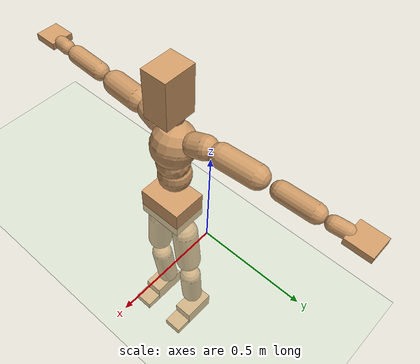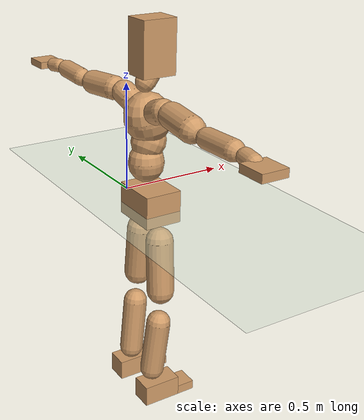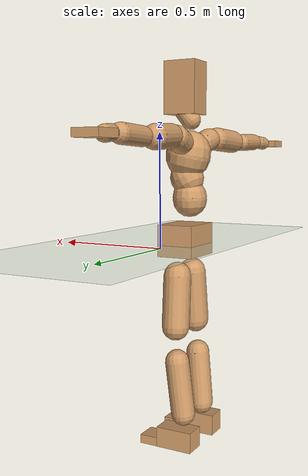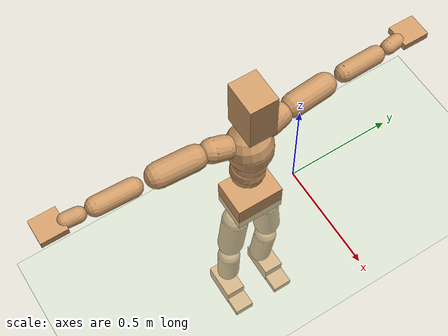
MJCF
<mujoco model="humanoid">
  <compiler coordinate="local" />
  <default>
    <joint damping="0.0" armature="0.01" stiffness="0.0" limited="true" />
    <geom conaffinity="1" condim="3" contype="7" margin="0.001" rgba="0.8 0.6 .4 1" />
  </default>
  <asset>
    <texture type="skybox" builtin="gradient" rgb1=".4 .5 .6" rgb2="0 0 0" width="100" height="100" />
    <texture builtin="flat" height="1278" mark="cross" markrgb="1 1 1" name="texgeom" random="0.01" rgb1="0.8 0.6 0.4" rgb2="0.8 0.6 0.4" type="cube" width="127" />
    <texture builtin="checker" height="100" name="texplane" rgb1="0 0 0" rgb2="0.8 0.8 0.8" type="2d" width="100" />
    <material name="MatPlane" reflectance="0.5" shininess="1" specular="1" texrepeat="60 60" texture="texplane" />
    <material name="geom" texture="texgeom" texuniform="true" />
  </asset>
  <worldbody>
    <light cutoff="100" diffuse="1 1 1" dir="-0 0 -1.3" directional="true" exponent="1" pos="0 0 1.3" specular=".1 .1 .1" />
    <geom conaffinity="1" condim="3" name="floor" pos="0 0 0" rgba="0.8 0.9 0.8 1" size="100 100 .2" type="plane" material="MatPlane" />
    <body name="Pelvis" pos="-0.0017 -0.2229 0.0309">
      <freejoint name="Pelvis" />
      <geom type="box" pos="-0.0066 -0.0001 -0.0119" size="0.0856 0.1106 0.0738" quat="1.0000 0.0000 0.0000 0.0000" density="1000" />
      <body name="L_Hip" pos="-0.0057 0.0717 -0.0932">
        <joint name="L_Hip_x" type="hinge" pos="0 0 0" axis="1 0 0" stiffness="800" damping="80" armature="0.02" range="-180.0000 180.0000" />
        <joint name="L_Hip_y" type="hinge" pos="0 0 0" axis="0 1 0" stiffness="800" damping="80" armature="0.02" range="-180.0000 180.0000" />
        <joint name="L_Hip_z" type="hinge" pos="0 0 0" axis="0 0 1" stiffness="800" damping="80" armature="0.02" range="-180.0000 180.0000" />
        <geom type="capsule" contype="1" conaffinity="1" density="2040.816327" fromto="-0.0010 0.0073 -0.0785 -0.0038 0.0293 -0.3140" size="0.0637" />
        <body name="L_Knee" pos="-0.0048 0.0367 -0.3926">
          <joint name="L_Knee_x" type="hinge" pos="0 0 0" axis="1 0 0" stiffness="800" damping="80" armature="0.02" range="-180.0000 180.0000" />
          <joint name="L_Knee_y" type="hinge" pos="0 0 0" axis="0 1 0" stiffness="800" damping="80" armature="0.02" range="-180.0000 180.0000" />
          <joint name="L_Knee_z" type="hinge" pos="0 0 0" axis="0 0 1" stiffness="800" damping="80" armature="0.02" range="-180.0000 180.0000" />
          <geom type="capsule" contype="1" conaffinity="1" density="1234.567901" fromto="-0.0091 -0.0028 -0.0839 -0.0365 -0.0113 -0.3355" size="0.0558" />
          <body name="L_Ankle" pos="-0.0456 -0.0141 -0.4193">
            <joint name="L_Ankle_x" type="hinge" pos="0 0 0" axis="1 0 0" stiffness="800" damping="80" armature="0.02" range="-180.0000 180.0000" />
            <joint name="L_Ankle_y" type="hinge" pos="0 0 0" axis="0 1 0" stiffness="800" damping="80" armature="0.02" range="-180.0000 180.0000" />
            <joint name="L_Ankle_z" type="hinge" pos="0 0 0" axis="0 0 1" stiffness="800" damping="80" armature="0.02" range="-180.0000 180.0000" />
            <geom type="box" pos="0.0249 0.0245 -0.0251" size="0.0877 0.05 0.0481" quat="1.0000 0.0000 0.0000 0.0000" density="1000" />
            <body name="L_Toe" pos="0.123 0.028 -0.0584">
              <joint name="L_Toe_x" type="hinge" pos="0 0 0" axis="1 0 0" stiffness="500" damping="50" armature="0.02" range="-180.0000 180.0000" />
              <joint name="L_Toe_y" type="hinge" pos="0 0 0" axis="0 1 0" stiffness="500" damping="50" armature="0.02" range="-180.0000 180.0000" />
              <joint name="L_Toe_z" type="hinge" pos="0 0 0" axis="0 0 1" stiffness="500" damping="50" armature="0.02" range="-180.0000 180.0000" />
              <geom type="box" pos="0.0257 -0.0036 0.0058" size="0.0513 0.0489 0.0206" quat="1.0000 0.0000 0.0000 0.0000" density="1000" />
            </body>
          </body>
        </body>
      </body>
      <body name="R_Hip" pos="-0.0032 -0.0698 -0.0923">
        <joint name="R_Hip_x" type="hinge" pos="0 0 0" axis="1 0 0" stiffness="800" damping="80" armature="0.02" range="-180.0000 180.0000" />
        <joint name="R_Hip_y" type="hinge" pos="0 0 0" axis="0 1 0" stiffness="800" damping="80" armature="0.02" range="-180.0000 180.0000" />
        <joint name="R_Hip_z" type="hinge" pos="0 0 0" axis="0 0 1" stiffness="800" damping="80" armature="0.02" range="-180.0000 180.0000" />
        <geom type="capsule" contype="1" conaffinity="1" density="2040.816327" fromto="-0.0019 -0.0082 -0.0800 -0.0076 -0.0328 -0.3201" size="0.0626" />
        <body name="R_Knee" pos="-0.0096 -0.041 -0.4002">
          <joint name="R_Knee_x" type="hinge" pos="0 0 0" axis="1 0 0" stiffness="800" damping="80" armature="0.02" range="-180.0000 180.0000" />
          <joint name="R_Knee_y" type="hinge" pos="0 0 0" axis="0 1 0" stiffness="800" damping="80" armature="0.02" range="-180.0000 180.0000" />
          <joint name="R_Knee_z" type="hinge" pos="0 0 0" axis="0 0 1" stiffness="800" damping="80" armature="0.02" range="-180.0000 180.0000" />
          <geom type="capsule" contype="1" conaffinity="1" density="1234.567901" fromto="-0.0088 0.0033 -0.0840 -0.0354 0.0130 -0.3360" size="0.0557" />
          <body name="R_Ankle" pos="-0.0442 0.0163 -0.42">
            <joint name="R_Ankle_x" type="hinge" pos="0 0 0" axis="1 0 0" stiffness="800" damping="80" armature="0.02" range="-180.0000 180.0000" />
            <joint name="R_Ankle_y" type="hinge" pos="0 0 0" axis="0 1 0" stiffness="800" damping="80" armature="0.02" range="-180.0000 180.0000" />
            <joint name="R_Ankle_z" type="hinge" pos="0 0 0" axis="0 0 1" stiffness="800" damping="80" armature="0.02" range="-180.0000 180.0000" />
            <geom type="box" pos="0.0263 -0.0234 -0.0182" size="0.0892 0.0492 0.0497" quat="1.0000 0.0000 0.0000 0.0000" density="1000" />
            <body name="R_Toe" pos="0.1272 -0.0278 -0.0505">
              <joint name="R_Toe_x" type="hinge" pos="0 0 0" axis="1 0 0" stiffness="500" damping="50" armature="0.02" range="-180.0000 180.0000" />
              <joint name="R_Toe_y" type="hinge" pos="0 0 0" axis="0 1 0" stiffness="500" damping="50" armature="0.02" range="-180.0000 180.0000" />
              <joint name="R_Toe_z" type="hinge" pos="0 0 0" axis="0 0 1" stiffness="500" damping="50" armature="0.02" range="-180.0000 180.0000" />
              <geom type="box" pos="0.0233 0.0044 0.0049" size="0.0508 0.0489 0.0223" quat="1.0000 0.0000 0.0000 0.0000" density="1000" />
            </body>
          </body>
        </body>
      </body>
      <body name="Torso" pos="-0.0293 -0.0026 0.1115">
        <joint name="Torso_x" type="hinge" pos="0 0 0" axis="1 0 0" stiffness="1000" damping="100" armature="0.02" range="-180.0000 180.0000" />
        <joint name="Torso_y" type="hinge" pos="0 0 0" axis="0 1 0" stiffness="1000" damping="100" armature="0.02" range="-180.0000 180.0000" />
        <joint name="Torso_z" type="hinge" pos="0 0 0" axis="0 0 1" stiffness="1000" damping="100" armature="0.02" range="-180.0000 180.0000" />
        <geom type="capsule" contype="1" conaffinity="1" density="2040.816327" fromto="-0.0000 0.0025 0.0609 -0.0001 0.0030 0.0744" size="0.0787" />
        <body name="Spine" pos="-0.0001 0.0055 0.1353">
          <joint name="Spine_x" type="hinge" pos="0 0 0" axis="1 0 0" stiffness="1000" damping="100" armature="0.02" range="-180.0000 180.0000" />
          <joint name="Spine_y" type="hinge" pos="0 0 0" axis="0 1 0" stiffness="1000" damping="100" armature="0.02" range="-180.0000 180.0000" />
          <joint name="Spine_z" type="hinge" pos="0 0 0" axis="0 0 1" stiffness="1000" damping="100" armature="0.02" range="-180.0000 180.0000" />
          <geom type="capsule" contype="1" conaffinity="1" density="2040.816327" fromto="0.0115 0.0006 0.0240 0.0141 0.0008 0.0293" size="0.077" />
          <body name="Chest" pos="0.0256 0.0014 0.0533">
            <joint name="Chest_x" type="hinge" pos="0 0 0" axis="1 0 0" stiffness="1000" damping="100" armature="0.02" range="-180.0000 180.0000" />
            <joint name="Chest_y" type="hinge" pos="0 0 0" axis="0 1 0" stiffness="1000" damping="100" armature="0.02" range="-180.0000 180.0000" />
            <joint name="Chest_z" type="hinge" pos="0 0 0" axis="0 0 1" stiffness="1000" damping="100" armature="0.02" range="-180.0000 180.0000" />
            <geom type="capsule" contype="1" conaffinity="1" density="2040.816327" fromto="-0.0172 -0.0009 0.0698 -0.0210 -0.0011 0.0853" size="0.1026" />
            <body name="Neck" pos="-0.0416 -0.003 0.2189">
              <joint name="Neck_x" type="hinge" pos="0 0 0" axis="1 0 0" stiffness="500" damping="50" armature="0.02" range="-180.0000 180.0000" />
              <joint name="Neck_y" type="hinge" pos="0 0 0" axis="0 1 0" stiffness="500" damping="50" armature="0.02" range="-180.0000 180.0000" />
              <joint name="Neck_z" type="hinge" pos="0 0 0" axis="0 0 1" stiffness="500" damping="50" armature="0.02" range="-180.0000 180.0000" />
              <geom type="capsule" contype="1" conaffinity="1" density="1000" fromto="0.0105 0.0010 0.0132 0.0419 0.0042 0.0527" size="0.0444" />
              <body name="Head" pos="0.0524 0.0052 0.0659">
                <joint name="Head_x" type="hinge" pos="0 0 0" axis="1 0 0" stiffness="500" damping="50" armature="0.02" range="-180.0000 180.0000" />
                <joint name="Head_y" type="hinge" pos="0 0 0" axis="0 1 0" stiffness="500" damping="50" armature="0.02" range="-180.0000 180.0000" />
                <joint name="Head_z" type="hinge" pos="0 0 0" axis="0 0 1" stiffness="500" damping="50" armature="0.02" range="-180.0000 180.0000" />
                <geom type="box" pos="-0.0118 -0.0041 0.0886" size="0.077 0.0613 0.117" quat="1.0000 0.0000 0.0000 0.0000" density="1000" />

              </body>
            </body>
            <body name="L_Thorax" pos="-0.0341 0.0806 0.1246">
              <joint name="L_Thorax_x" type="hinge" pos="0 0 0" axis="1 0 0" stiffness="500" damping="50" armature="0.02" range="-180.0000 180.0000" />
              <joint name="L_Thorax_y" type="hinge" pos="0 0 0" axis="0 1 0" stiffness="500" damping="50" armature="0.02" range="-180.0000 180.0000" />
              <joint name="L_Thorax_z" type="hinge" pos="0 0 0" axis="0 0 1" stiffness="500" damping="50" armature="0.02" range="-180.0000 180.0000" />
              <geom type="capsule" contype="1" conaffinity="1" density="1000" fromto="-0.0018 0.0185 0.0064 -0.0074 0.0740 0.0257" size="0.0537" />
              <body name="L_Shoulder" pos="-0.0092 0.0925 0.0321">
                <joint name="L_Shoulder_x" type="hinge" pos="0 0 0" axis="1 0 0" stiffness="500" damping="50" armature="0.02" range="-720.0000 720.0000" />
                <joint name="L_Shoulder_y" type="hinge" pos="0 0 0" axis="0 1 0" stiffness="500" damping="50" armature="0.02" range="-720.0000 720.0000" />
                <joint name="L_Shoulder_z" type="hinge" pos="0 0 0" axis="0 0 1" stiffness="500" damping="50" armature="0.02" range="-720.0000 720.0000" />
                <geom type="capsule" contype="1" conaffinity="1" density="1000" fromto="-0.0058 0.0539 -0.0030 -0.0234 0.2157 -0.0120" size="0.0536" />
                <body name="L_Elbow" pos="-0.0292 0.2696 -0.015">
                  <joint name="L_Elbow_x" type="hinge" pos="0 0 0" axis="1 0 0" stiffness="500" damping="50" armature="0.02" range="-720.0000 720.0000" />
                  <joint name="L_Elbow_y" type="hinge" pos="0 0 0" axis="0 1 0" stiffness="500" damping="50" armature="0.02" range="-720.0000 720.0000" />
                  <joint name="L_Elbow_z" type="hinge" pos="0 0 0" axis="0 0 1" stiffness="500" damping="50" armature="0.02" range="-720.0000 720.0000" />
                  <geom type="capsule" contype="1" conaffinity="1" density="1000" fromto="-0.0002 0.0520 0.0020 -0.0007 0.2082 0.0082" size="0.0416" />
                  <body name="L_Wrist" pos="-0.0008 0.2602 0.0102">
                    <joint name="L_Wrist_x" type="hinge" pos="0 0 0" axis="1 0 0" stiffness="300" damping="30" armature="0.02" range="-180.0000 180.0000" />
                    <joint name="L_Wrist_y" type="hinge" pos="0 0 0" axis="0 1 0" stiffness="300" damping="30" armature="0.02" range="-180.0000 180.0000" />
                    <joint name="L_Wrist_z" type="hinge" pos="0 0 0" axis="0 0 1" stiffness="300" damping="30" armature="0.02" range="-180.0000 180.0000" />
                    <geom type="capsule" contype="1" conaffinity="1" density="1000" fromto="-0.0031 0.0174 -0.0017 -0.0124 0.0694 -0.0067" size="0.0327" />
                    <body name="L_Hand" pos="-0.0155 0.0868 -0.0084">
                      <joint name="L_Hand_x" type="hinge" pos="0 0 0" axis="1 0 0" stiffness="300" damping="30" armature="0.02" range="-180.0000 180.0000" />
                      <joint name="L_Hand_y" type="hinge" pos="0 0 0" axis="0 1 0" stiffness="300" damping="30" armature="0.02" range="-180.0000 180.0000" />
                      <joint name="L_Hand_z" type="hinge" pos="0 0 0" axis="0 0 1" stiffness="300" damping="30" armature="0.02" range="-180.0000 180.0000" />
                      <geom type="box" pos="-0.0059 0.0508 0.0010" size="0.0554 0.0602 0.0163" quat="1.0000 0.0000 0.0000 0.0000" density="1000" />
                    </body>
                  </body>
                </body>
              </body>
            </body>
            <body name="R_Thorax" pos="-0.0388 -0.0835 0.1216">
              <joint name="R_Thorax_x" type="hinge" pos="0 0 0" axis="1 0 0" stiffness="500" damping="50" armature="0.02" range="-180.0000 180.0000" />
              <joint name="R_Thorax_y" type="hinge" pos="0 0 0" axis="0 1 0" stiffness="500" damping="50" armature="0.02" range="-180.0000 180.0000" />
              <joint name="R_Thorax_z" type="hinge" pos="0 0 0" axis="0 0 1" stiffness="500" damping="50" armature="0.02" range="-180.0000 180.0000" />
              <geom type="capsule" contype="1" conaffinity="1" density="1000" fromto="-0.0018 -0.0195 0.0068 -0.0072 -0.0781 0.0274" size="0.0526" />
              <body name="R_Shoulder" pos="-0.009 -0.0976 0.0342">
                <joint name="R_Shoulder_x" type="hinge" pos="0 0 0" axis="1 0 0" stiffness="500" damping="50" armature="0.02" range="-720.0000 720.0000" />
                <joint name="R_Shoulder_y" type="hinge" pos="0 0 0" axis="0 1 0" stiffness="500" damping="50" armature="0.02" range="-720.0000 720.0000" />
                <joint name="R_Shoulder_z" type="hinge" pos="0 0 0" axis="0 0 1" stiffness="500" damping="50" armature="0.02" range="-720.0000 720.0000" />
                <geom type="capsule" contype="1" conaffinity="1" density="1000" fromto="-0.0046 -0.0528 -0.0030 -0.0186 -0.2110 -0.0121" size="0.055" />
                <body name="R_Elbow" pos="-0.0232 -0.2638 -0.0151">
                  <joint name="R_Elbow_x" type="hinge" pos="0 0 0" axis="1 0 0" stiffness="500" damping="50" armature="0.02" range="-720.0000 720.0000" />
                  <joint name="R_Elbow_y" type="hinge" pos="0 0 0" axis="0 1 0" stiffness="500" damping="50" armature="0.02" range="-720.0000 720.0000" />
                  <joint name="R_Elbow_z" type="hinge" pos="0 0 0" axis="0 0 1" stiffness="500" damping="50" armature="0.02" range="-720.0000 720.0000" />
                  <geom type="capsule" contype="1" conaffinity="1" density="1000" fromto="-0.0011 -0.0532 0.0017 -0.0045 -0.2127 0.0068" size="0.0419" />
                  <body name="R_Wrist" pos="-0.0056 -0.2659 0.0085">
                    <joint name="R_Wrist_x" type="hinge" pos="0 0 0" axis="1 0 0" stiffness="300" damping="30" armature="0.02" range="-180.0000 180.0000" />
                    <joint name="R_Wrist_y" type="hinge" pos="0 0 0" axis="0 1 0" stiffness="300" damping="30" armature="0.02" range="-180.0000 180.0000" />
                    <joint name="R_Wrist_z" type="hinge" pos="0 0 0" axis="0 0 1" stiffness="300" damping="30" armature="0.02" range="-180.0000 180.0000" />
                    <geom type="capsule" contype="1" conaffinity="1" density="1000" fromto="-0.0021 -0.0174 -0.0012 -0.0085 -0.0697 -0.0050" size="0.0335" />
                    <body name="R_Hand" pos="-0.0106 -0.0871 -0.0062">
                      <joint name="R_Hand_x" type="hinge" pos="0 0 0" axis="1 0 0" stiffness="300" damping="30" armature="0.02" range="-180.0000 180.0000" />
                      <joint name="R_Hand_y" type="hinge" pos="0 0 0" axis="0 1 0" stiffness="300" damping="30" armature="0.02" range="-180.0000 180.0000" />
                      <joint name="R_Hand_z" type="hinge" pos="0 0 0" axis="0 0 1" stiffness="300" damping="30" armature="0.02" range="-180.0000 180.0000" />
                      <geom type="box" pos="-0.0081 -0.0475 -0.0009" size="0.0561 0.0585 0.0168" quat="1.0000 0.0000 0.0000 0.0000" density="1000" />
                    </body>
                  </body>
                </body>
              </body>
            </body>
          </body>
        </body>
      </body>
    </body>
  </worldbody>
  <actuator>
    <motor name="L_Hip_x" joint="L_Hip_x" gear="500" />
    <motor name="L_Hip_y" joint="L_Hip_y" gear="500" />
    <motor name="L_Hip_z" joint="L_Hip_z" gear="500" />
    <motor name="L_Knee_x" joint="L_Knee_x" gear="500" />
    <motor name="L_Knee_y" joint="L_Knee_y" gear="500" />
    <motor name="L_Knee_z" joint="L_Knee_z" gear="500" />
    <motor name="L_Ankle_x" joint="L_Ankle_x" gear="500" />
    <motor name="L_Ankle_y" joint="L_Ankle_y" gear="500" />
    <motor name="L_Ankle_z" joint="L_Ankle_z" gear="500" />
    <motor name="L_Toe_x" joint="L_Toe_x" gear="500" />
    <motor name="L_Toe_y" joint="L_Toe_y" gear="500" />
    <motor name="L_Toe_z" joint="L_Toe_z" gear="500" />
    <motor name="R_Hip_x" joint="R_Hip_x" gear="500" />
    <motor name="R_Hip_y" joint="R_Hip_y" gear="500" />
    <motor name="R_Hip_z" joint="R_Hip_z" gear="500" />
    <motor name="R_Knee_x" joint="R_Knee_x" gear="500" />
    <motor name="R_Knee_y" joint="R_Knee_y" gear="500" />
    <motor name="R_Knee_z" joint="R_Knee_z" gear="500" />
    <motor name="R_Ankle_x" joint="R_Ankle_x" gear="500" />
    <motor name="R_Ankle_y" joint="R_Ankle_y" gear="500" />
    <motor name="R_Ankle_z" joint="R_Ankle_z" gear="500" />
    <motor name="R_Toe_x" joint="R_Toe_x" gear="500" />
    <motor name="R_Toe_y" joint="R_Toe_y" gear="500" />
    <motor name="R_Toe_z" joint="R_Toe_z" gear="500" />
    <motor name="Torso_x" joint="Torso_x" gear="500" />
    <motor name="Torso_y" joint="Torso_y" gear="500" />
    <motor name="Torso_z" joint="Torso_z" gear="500" />
    <motor name="Spine_x" joint="Spine_x" gear="500" />
    <motor name="Spine_y" joint="Spine_y" gear="500" />
    <motor name="Spine_z" joint="Spine_z" gear="500" />
    <motor name="Chest_x" joint="Chest_x" gear="500" />
    <motor name="Chest_y" joint="Chest_y" gear="500" />
    <motor name="Chest_z" joint="Chest_z" gear="500" />
    <motor name="Neck_x" joint="Neck_x" gear="500" />
    <motor name="Neck_y" joint="Neck_y" gear="500" />
    <motor name="Neck_z" joint="Neck_z" gear="500" />
    <motor name="Head_x" joint="Head_x" gear="500" />
    <motor name="Head_y" joint="Head_y" gear="500" />
    <motor name="Head_z" joint="Head_z" gear="500" />
    <motor name="L_Thorax_x" joint="L_Thorax_x" gear="500" />
    <motor name="L_Thorax_y" joint="L_Thorax_y" gear="500" />
    <motor name="L_Thorax_z" joint="L_Thorax_z" gear="500" />
    <motor name="L_Shoulder_x" joint="L_Shoulder_x" gear="500" />
    <motor name="L_Shoulder_y" joint="L_Shoulder_y" gear="500" />
    <motor name="L_Shoulder_z" joint="L_Shoulder_z" gear="500" />
    <motor name="L_Elbow_x" joint="L_Elbow_x" gear="500" />
    <motor name="L_Elbow_y" joint="L_Elbow_y" gear="500" />
    <motor name="L_Elbow_z" joint="L_Elbow_z" gear="500" />
    <motor name="L_Wrist_x" joint="L_Wrist_x" gear="500" />
    <motor name="L_Wrist_y" joint="L_Wrist_y" gear="500" />
    <motor name="L_Wrist_z" joint="L_Wrist_z" gear="500" />
    <motor name="L_Hand_x" joint="L_Hand_x" gear="500" />
    <motor name="L_Hand_y" joint="L_Hand_y" gear="500" />
    <motor name="L_Hand_z" joint="L_Hand_z" gear="500" />
    <motor name="R_Thorax_x" joint="R_Thorax_x" gear="500" />
    <motor name="R_Thorax_y" joint="R_Thorax_y" gear="500" />
    <motor name="R_Thorax_z" joint="R_Thorax_z" gear="500" />
    <motor name="R_Shoulder_x" joint="R_Shoulder_x" gear="500" />
    <motor name="R_Shoulder_y" joint="R_Shoulder_y" gear="500" />
    <motor name="R_Shoulder_z" joint="R_Shoulder_z" gear="500" />
    <motor name="R_Elbow_x" joint="R_Elbow_x" gear="500" />
    <motor name="R_Elbow_y" joint="R_Elbow_y" gear="500" />
    <motor name="R_Elbow_z" joint="R_Elbow_z" gear="500" />
    <motor name="R_Wrist_x" joint="R_Wrist_x" gear="500" />
    <motor name="R_Wrist_y" joint="R_Wrist_y" gear="500" />
    <motor name="R_Wrist_z" joint="R_Wrist_z" gear="500" />
    <motor name="R_Hand_x" joint="R_Hand_x" gear="500" />
    <motor name="R_Hand_y" joint="R_Hand_y" gear="500" />
    <motor name="R_Hand_z" joint="R_Hand_z" gear="500" />
  </actuator>
  <contact>
    <exclude body1="Torso" body2="Chest" />
    <exclude body1="Head" body2="Chest" />
    <exclude body1="R_Knee" body2="R_Toe" />
    <exclude body1="R_Knee" body2="L_Ankle" />
    <exclude body1="R_Knee" body2="L_Toe" />
    <exclude body1="L_Knee" body2="L_Toe" />
    <exclude body1="L_Knee" body2="R_Ankle" />
    <exclude body1="L_Knee" body2="R_Toe" />
    <exclude body1="L_Shoulder" body2="Chest" />
    <exclude body1="R_Shoulder" body2="Chest" />
  </contact>
  <sensor />
  <size njmax="700" nconmax="700" />
</mujoco>
